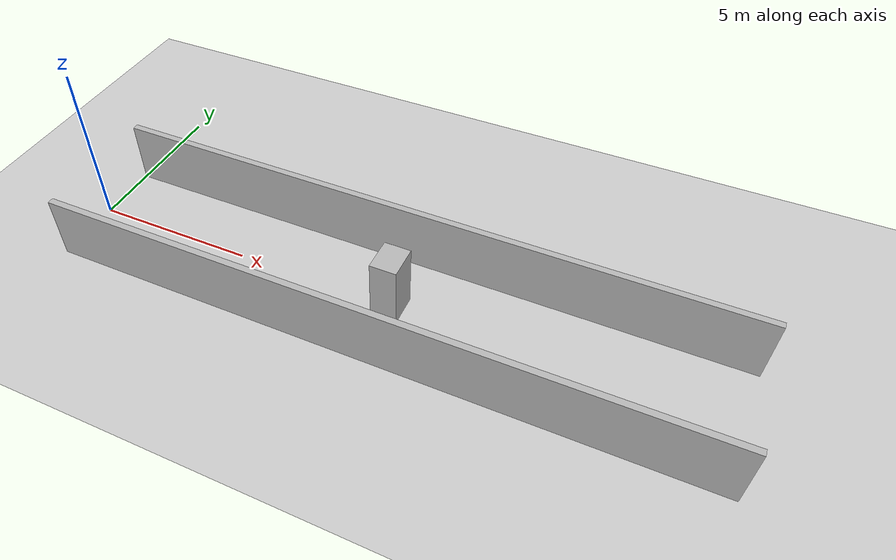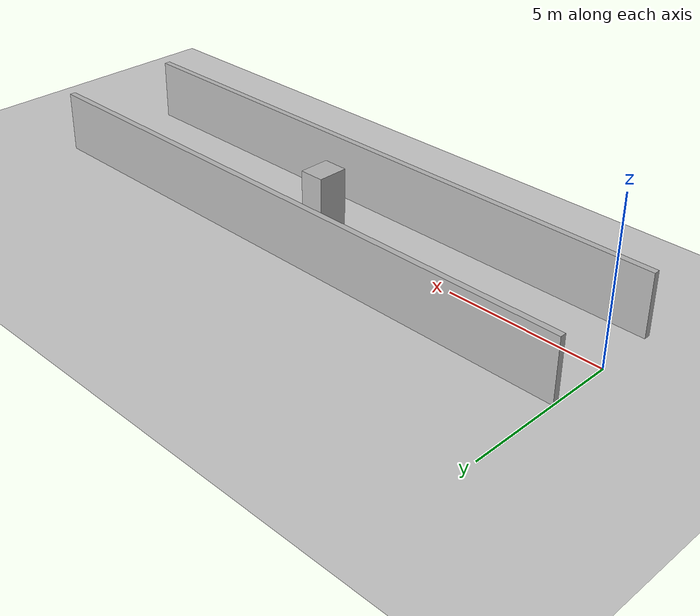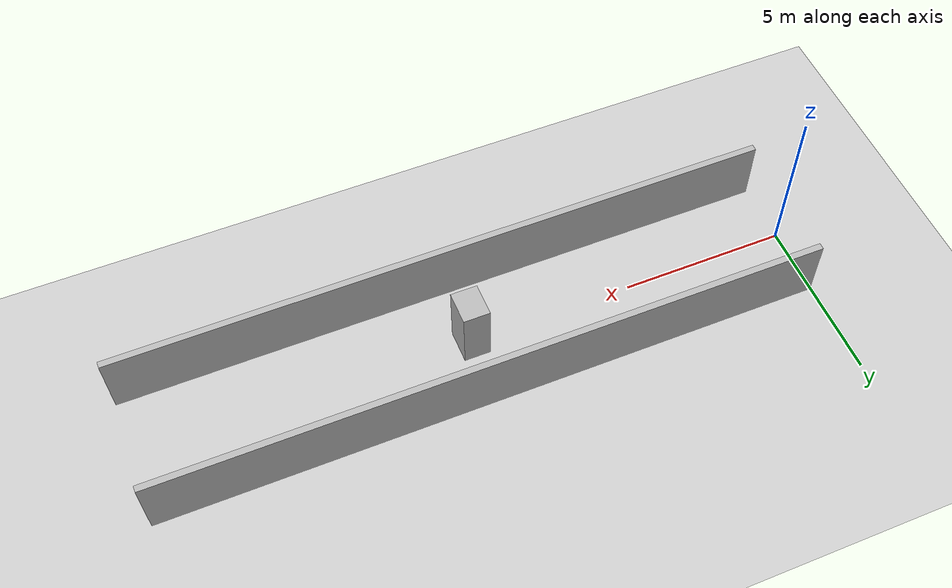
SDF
<?xml version="1.0"?>
<sdf version="1.8">
  <world name="degenerate_corridor">

    <model name="wall_north">
      <static>true</static>
      <pose>10 2 1 0 0 0</pose>
      <link name="link">
        <collision name="collision"><geometry><box><size>20 0.2 2</size></box></geometry></collision>
        <visual name="visual"><geometry><box><size>20 0.2 2</size></box></geometry></visual>
      </link>
    </model>

    <model name="wall_south">
      <static>true</static>
      <pose>10 -2 1 0 0 0</pose>
      <link name="link">
        <collision name="collision"><geometry><box><size>20 0.2 2</size></box></geometry></collision>
        <visual name="visual"><geometry><box><size>20 0.2 2</size></box></geometry></visual>
      </link>
    </model>

    <model name="wall_panel">
      <static>false</static>
      <pose>10 0 1 0 0 0</pose>
      <link name="link">
        <collision name="collision"><geometry><box><size>0.8 1.0 2</size></box></geometry></collision>
        <visual name="visual"><geometry><box><size>0.8 1.0 2</size></box></geometry></visual>
      </link>
    </model>

    <model name="ground_plane">
      <static>true</static>
      <link name="link">
        <collision name="collision"><geometry><plane><normal>0 0 1</normal><size>25 6</size></plane></geometry></collision>
        <visual name="visual"><geometry><plane><normal>0 0 1</normal><size>25 6</size></plane></geometry></visual>
      </link>
    </model>

  </world>
</sdf>
